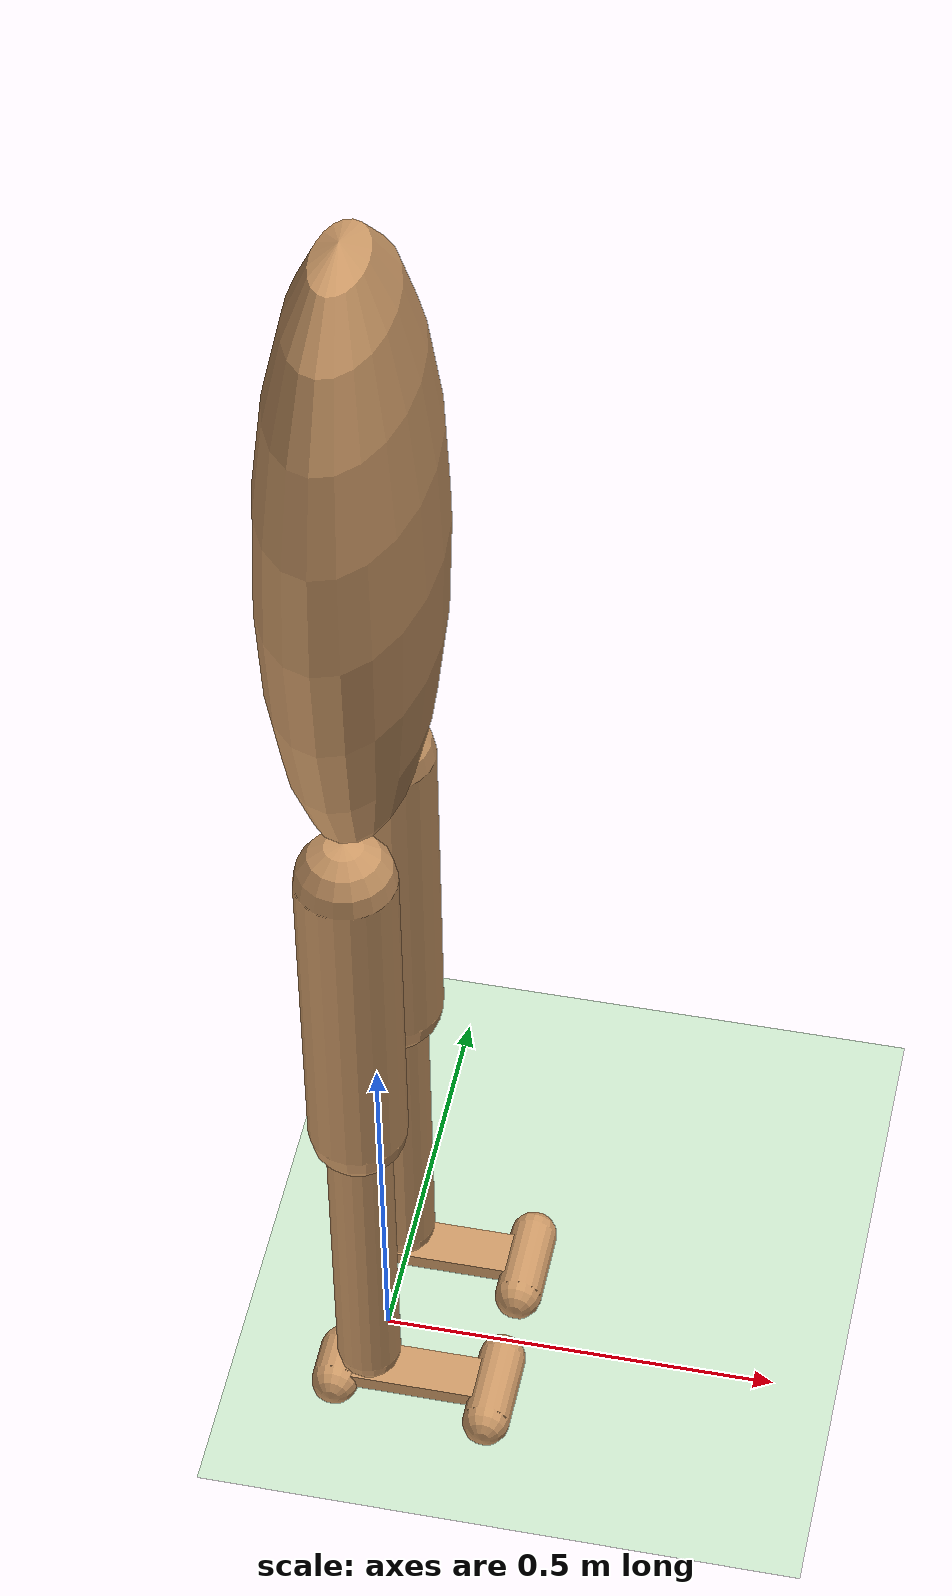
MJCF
<mujoco model="humanloco2d">
  <compiler angle="degree" coordinate="local" inertiafromgeom="false"/>
  <default>
    <joint armature="0" damping="0" limited="true"/>
    <geom conaffinity="0" condim="3" contype="1" density="1000" friction=".7 .1 .1" rgba="0.8 0.6 .4 1"/>
  </default>
  <option integrator="RK4" timestep="0.002"/>
  <worldbody>
    <light cutoff="100" diffuse="1 1 1" dir="-0 0 -1.3" directional="true" exponent="1" pos="0 0 1.3" specular=".1 .1 .1"/>
    <geom conaffinity="1" condim="3" name="floor" pos="0 0 0" rgba="0.8 0.9 0.8 1" size="40 40 40" type="plane" material="MatPlane"/>
    <body name="torso" pos="0 0 1.31">
      <camera name="track" mode="trackcom" pos="0 -3 1" xyaxes="1 0 0 0 0 1"/>
      <joint armature="0" axis="1 0 0" damping="0" limited="false" name="rootx" pos="0 0 0" stiffness="0" type="slide"/>
      <joint armature="0" axis="0 0 1" damping="0" limited="false" name="rootz" pos="0 0 0" ref="1.25" stiffness="0" type="slide"/>
      <joint armature="0" axis="0 1 0" damping="0" limited="false" name="roottheta" pos="0 0 1.25" stiffness="0" type="hinge"/>
      <inertial pos="0 0 0" mass="54" diaginertia="4.0 3.0 1.0"/>
      <geom friction="0.9" name="torso_geom" pos="0 0 0.075" size="0.1 0.2 0.425" type="ellipsoid"/>
      <body name="r_thigh" pos="0 -.1 -0.35">
        <joint axis="0 1 0" name="r_hip" pos="0 0 0" range="-120 30" type="hinge"/>
        <inertial pos="0 0 -0.16" mass="8" diaginertia="0.15 0.15 0.03"/>
        <geom friction="0.9" fromto="0 0 0 0 0 -0.44" name="r_thigh_geom" size="0.06" type="capsule"/>
        <body name="r_shank" pos="0 0 -0.44">
          <joint axis="0 -1 0" name="r_knee" pos="0 0 0" range="-150 0" type="hinge"/>
          <inertial pos="0 0 -0.16" mass="3.75" diaginertia="0.05 0.05 0.003"/>
          <geom friction="0.9" fromto="0 0 0 0 0 -0.44" name="r_shank_geom" size="0.04" type="capsule"/>
          <body name="r_foot" pos="0 0 -0.44">
            <joint axis="0 1 0" name="r_ankle" pos="0 0 0" range="-30 60" type="hinge"/>
            <inertial pos="0.02 0 -0.01" mass="1.25" diaginertia="0.0007 0.005 0.005"/>
            <geom friction="0.9" name="r_foot_geom" pos="0.06 0 -0.04" size="0.1 0.03 0.01" type="box"/>
            <geom friction="2.0" fromto="-0.04 -0.025 -0.05 -0.04 0.025 -0.05" name="r_foot_geom1" size="0.03" type="capsule"/>
            <geom friction="2.0" fromto="0.16 -0.05 -0.05 0.16 0.05 -0.05" name="r_foot_geom2" size="0.03" type="capsule"/>
          </body>
        </body>
      </body>
      <!-- left leg is symmetric to the right-->
      <body name="l_thigh" pos="0 .1 -0.35">
        <joint axis="0 1 0" name="l_hip" pos="0 0 0" range="-120 30" type="hinge"/>
        <inertial pos="0 0 -0.16" mass="8" diaginertia="0.15 0.15 0.03"/>
        <geom friction="0.9" fromto="0 0 0 0 0 -0.44" name="l_thigh_geom" size="0.06" type="capsule"/>
        <body name="l_shank" pos="0 0 -0.44">
          <joint axis="0 -1 0" name="l_knee" pos="0 0 0" range="-150 0" type="hinge"/>
          <inertial pos="0 0 -0.16" mass="3.75" diaginertia="0.05 0.05 0.003"/>
          <geom friction="0.9" fromto="0 0 0 0 0 -0.44" name="l_shank_geom" size="0.04" type="capsule"/>
          <body name="l_foot" pos="0 0 -0.44">
            <joint axis="0 1 0" name="l_ankle" pos="0 0 0" range="-30 60" type="hinge"/>
            <inertial pos="0.02 0 -0.01" mass="1.25" diaginertia="0.0007 0.005 0.005"/>
            <geom friction="0.9" name="l_foot_geom" pos="0.06 0 -0.04" size="0.1 0.03 0.01" type="box"/>
            <geom friction="2.0" fromto="-0.04 -0.025 -0.05 -0.04 0.025 -0.05" name="l_foot_geom1" size="0.03" type="capsule"/>
            <geom friction="2.0" fromto="0.16 -0.05 -0.05 0.16 0.05 -0.05" name="l_foot_geom2" size="0.03" type="capsule"/>
          </body>
        </body>
      </body>

    </body>
  </worldbody>
  <actuator>
    <motor ctrllimited="false" gear="1.0" joint="r_hip"/>
    <motor ctrllimited="false" gear="1.0" joint="r_knee"/>
    <motor ctrllimited="false" gear="1.0" joint="r_ankle"/>
    <motor ctrllimited="false" gear="1.0" joint="l_hip"/>
    <motor ctrllimited="false" gear="1.0" joint="l_knee"/>
    <motor ctrllimited="false" gear="1.0" joint="l_ankle"/>
  </actuator>
    <asset>
        <texture type="skybox" builtin="gradient" rgb1=".4 .5 .6" rgb2="0 0 0" width="100" height="100"/>
        <texture builtin="flat" height="1278" mark="cross" markrgb="1 1 1" name="texgeom" random="0.01" rgb1="0.8 0.6 0.4" rgb2="0.8 0.6 0.4" type="cube" width="127"/>
        <texture builtin="checker" height="100" name="texplane" rgb1="0 0 0" rgb2="0.8 0.8 0.8" type="2d" width="100"/>
        <material name="MatPlane" reflectance="0.5" shininess="1" specular="1" texrepeat="60 60" texture="texplane"/>
        <material name="geom" texture="texgeom" texuniform="true"/>
    </asset>
</mujoco>
